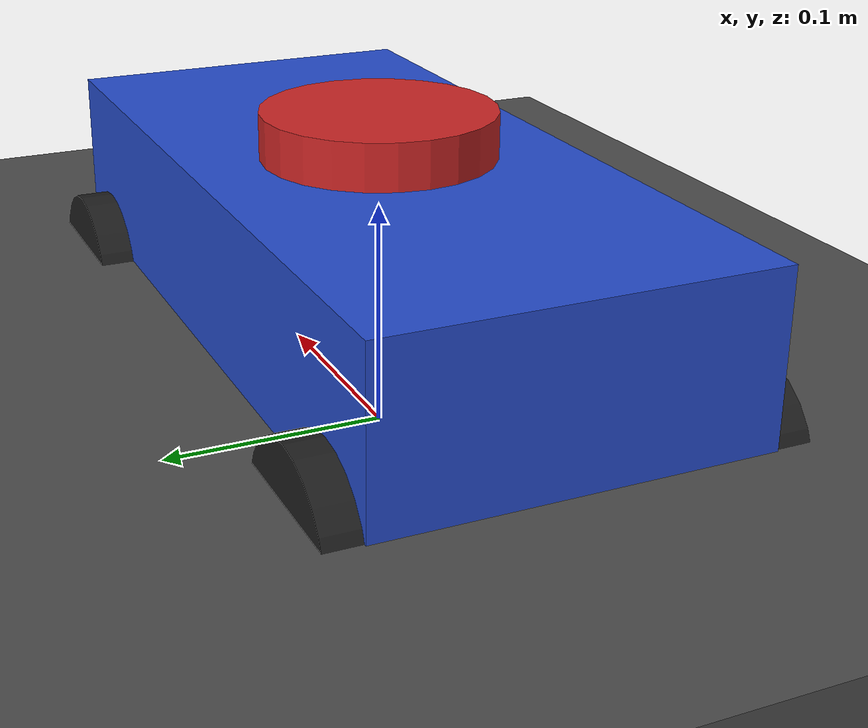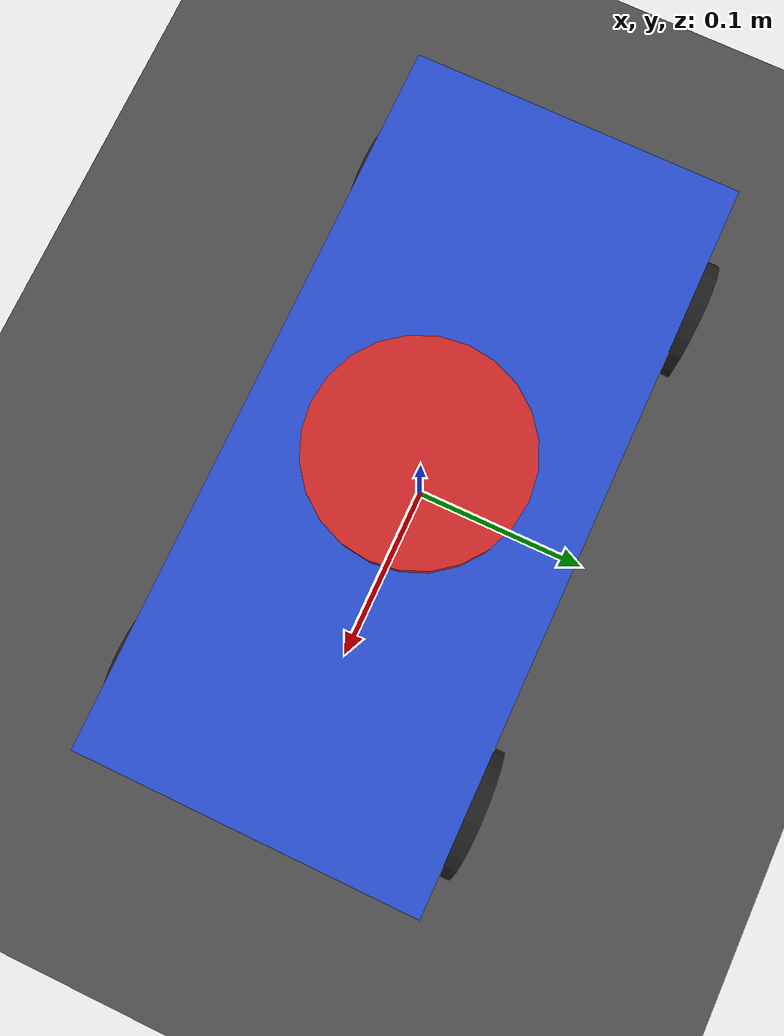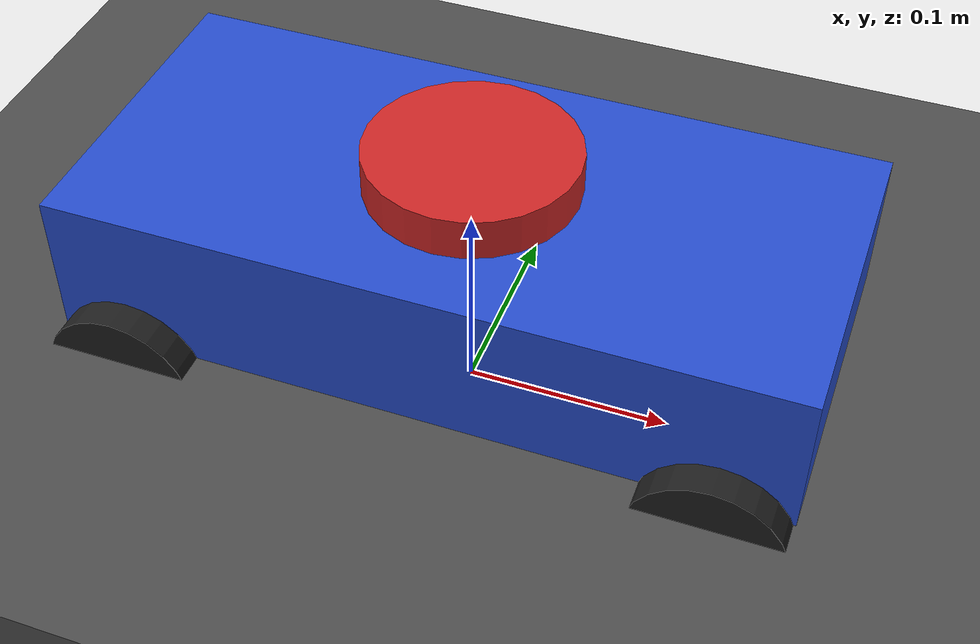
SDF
<sdf version="1.7">
 <world name="default">
  <model name="ground_plane">
   <static>1</static>
   <link name="link">
    <collision name="collision">
     <geometry><plane><normal>0 0 1</normal><size>100 100</size></plane></geometry>
     <surface><friction><ode><mu>100</mu><mu2>50</mu2></ode></friction></surface>
    </collision>
    <visual name="visual">
     <cast_shadows>0</cast_shadows>
     <geometry><plane><normal>0 0 1</normal><size>100 100</size></plane></geometry>
     <material>
      <script><uri>file://media/materials/scripts/gazebo.material</uri><name>Gazebo/Grey</name></script>
     </material>
    </visual>
   </link>
  </model>
  <model name="my_bot">
   <link name="base_link">
    <inertial>
     <pose>-0.00046 0 0.079179 0 -0 0</pose>
     <mass>603</mass>
     <inertia>
      <ixx>87.2384</ixx>
      <ixy>0.576</ixy>
      <ixz>5.37115</ixz>
      <iyy>105.633</iyy>
      <iyz>2.736</iyz>
      <izz>46.3544</izz>
     </inertia>
    </inertial>
    <collision name="base_link_fixed_joint_lump__chassis_collision">
     <pose>0 0 0.07925 0 -0 0</pose>
     <geometry><box><size>0.347 0.161 0.0855</size></box></geometry>
    </collision>
    <collision name="base_link_fixed_joint_lump__back_left_mount_collision_1">
     <pose>-0.1388 0.0805 0.0365 0 -0 0</pose>
     <geometry><cylinder><length>0.01</length><radius>0.0365</radius></cylinder></geometry>
    </collision>
    <collision name="base_link_fixed_joint_lump__back_right_mount_collision_2">
     <pose>-0.1388 -0.0805 0.0365 0 -0 0</pose>
     <geometry><cylinder><length>0.01</length><radius>0.0365</radius></cylinder></geometry>
    </collision>
    <collision name="base_link_fixed_joint_lump__laser_frame_collision_3">
     <pose>0 0 0.122 0 -0 0</pose>
     <geometry><cylinder><length>0.04</length><radius>0.05</radius></cylinder></geometry>
    </collision>
    <visual name="base_link_fixed_joint_lump__chassis_visual">
     <pose>0 0 0.07925 0 -0 0</pose>
     <geometry><box><size>0.347 0.161 0.0855</size></box></geometry>
     <material>
      <script><name>Gazebo/Blue</name><uri>file://media/materials/scripts/gazebo.material</uri></script>
     </material>
    </visual>
    <visual name="base_link_fixed_joint_lump__back_left_mount_visual_1">
     <pose>-0.1388 0.0805 0.0365 0 -0 0</pose>
     <geometry><cylinder><length>0.01</length><radius>0.0365</radius></cylinder></geometry>
    </visual>
    <visual name="base_link_fixed_joint_lump__back_right_mount_visual_2">
     <pose>-0.1388 -0.0805 0.0365 0 -0 0</pose>
     <geometry><cylinder><length>0.01</length><radius>0.0365</radius></cylinder></geometry>
    </visual>
    <visual name="base_link_fixed_joint_lump__laser_frame_visual_3">
     <pose>0 0 0.122 0 -0 0</pose>
     <geometry><cylinder><length>0.04</length><radius>0.05</radius></cylinder></geometry>
     <material>
      <script><name>Gazebo/Red</name><uri>file://media/materials/scripts/gazebo.material</uri></script>
     </material>
    </visual>
    <sensor name="laser" type="ray">
     <visualize>1</visualize>
     <update_rate>10</update_rate>
     <ray>
      <scan>
       <horizontal>
        <samples>360</samples>
        <resolution>1</resolution>
        <min_angle>-3.14</min_angle>
        <max_angle>3.14</max_angle>
       </horizontal>
       <vertical><samples>1</samples><min_angle>0</min_angle><max_angle>0</max_angle></vertical>
      </scan>
      <range><min>0.3</min><max>12</max><resolution>0.01</resolution></range>
     </ray>
     <plugin name="laser_controller" filename="libgazebo_ros_ray_sensor.so">
      <ros><remapping>~/out:=scan</remapping></ros>
      <output_type>sensor_msgs/LaserScan</output_type>
      <frame_name>laser_frame</frame_name>
     </plugin>
     <pose>0 0 0.122 0 -0 0</pose>
    </sensor>
   </link>
   <joint name="back_left_wheel_joint" type="revolute">
    <pose relative_to="base_link">-0.1388 0.0805 0.0365 0 -0 0</pose>
    <parent>base_link</parent>
    <child>back_left_wheel</child>
    <axis>
     <xyz>0 1 0</xyz>
     <limit><lower>-1e+16</lower><upper>1e+16</upper></limit>
     <dynamics><spring_reference>0</spring_reference><spring_stiffness>0</spring_stiffness></dynamics>
    </axis>
   </joint>
   <link name="back_left_wheel">
    <pose relative_to="back_left_wheel_joint">0 0 0 0 -0 0</pose>
    <inertial>
     <mass>1</mass>
     <inertia><ixx>1</ixx><ixy>0</ixy><ixz>0</ixz><iyy>1</iyy><iyz>0</iyz><izz>1</izz></inertia>
    </inertial>
    <collision name="back_left_wheel_collision">
     <pose>0 0 0 1.5708 -0 0</pose>
     <geometry><cylinder><length>0.03</length><radius>0.0365</radius></cylinder></geometry>
    </collision>
    <visual name="back_left_wheel_visual">
     <pose>0 0 0 1.5708 -0 0</pose>
     <geometry><cylinder><length>0.03</length><radius>0.0365</radius></cylinder></geometry>
     <material>
      <script><name>Gazebo/Black</name><uri>file://media/materials/scripts/gazebo.material</uri></script>
     </material>
    </visual>
   </link>
   <joint name="back_right_wheel_joint" type="revolute">
    <pose relative_to="base_link">-0.1388 -0.0805 0.0365 0 -0 0</pose>
    <parent>base_link</parent>
    <child>back_right_wheel</child>
    <axis>
     <xyz>0 1 0</xyz>
     <limit><lower>-1e+16</lower><upper>1e+16</upper></limit>
     <dynamics><spring_reference>0</spring_reference><spring_stiffness>0</spring_stiffness></dynamics>
    </axis>
   </joint>
   <link name="back_right_wheel">
    <pose relative_to="back_right_wheel_joint">0 0 0 0 -0 0</pose>
    <inertial>
     <mass>1</mass>
     <inertia><ixx>1</ixx><ixy>0</ixy><ixz>0</ixz><iyy>1</iyy><iyz>0</iyz><izz>1</izz></inertia>
    </inertial>
    <collision name="back_right_wheel_collision">
     <pose>0 0 0 1.5708 -0 0</pose>
     <geometry><cylinder><length>0.03</length><radius>0.0365</radius></cylinder></geometry>
    </collision>
    <visual name="back_right_wheel_visual">
     <pose>0 0 0 1.5708 -0 0</pose>
     <geometry><cylinder><length>0.03</length><radius>0.0365</radius></cylinder></geometry>
     <material>
      <script><name>Gazebo/Black</name><uri>file://media/materials/scripts/gazebo.material</uri></script>
     </material>
    </visual>
   </link>
   <joint name="front_left_mount_joint" type="revolute">
    <pose relative_to="base_link">0.1388 0.0805 0.0365 0 -0 0</pose>
    <parent>base_link</parent>
    <child>front_left_mount</child>
    <axis>
     <xyz>0 0 1</xyz>
     <limit><lower>-1e+16</lower><upper>1e+16</upper></limit>
     <dynamics><spring_reference>0</spring_reference><spring_stiffness>0</spring_stiffness></dynamics>
    </axis>
   </joint>
   <link name="front_left_mount">
    <pose relative_to="front_left_mount_joint">0 0 0 0 -0 0</pose>
    <inertial>
     <mass>1</mass>
     <inertia><ixx>1</ixx><ixy>0</ixy><ixz>0</ixz><iyy>1</iyy><iyz>0</iyz><izz>1</izz></inertia>
    </inertial>
    <collision name="front_left_mount_collision">
     <geometry><cylinder><length>0.01</length><radius>0.0365</radius></cylinder></geometry>
    </collision>
    <visual name="front_left_mount_visual">
     <geometry><cylinder><length>0.01</length><radius>0.0365</radius></cylinder></geometry>
    </visual>
   </link>
   <joint name="front_left_wheel_joint" type="revolute">
    <pose relative_to="front_left_mount">0 0 0 0 -0 0</pose>
    <parent>front_left_mount</parent>
    <child>front_left_wheel</child>
    <axis>
     <xyz>0 1 0</xyz>
     <limit><lower>-1e+16</lower><upper>1e+16</upper></limit>
     <dynamics><spring_reference>0</spring_reference><spring_stiffness>0</spring_stiffness></dynamics>
    </axis>
   </joint>
   <link name="front_left_wheel">
    <pose relative_to="front_left_wheel_joint">0 0 0 0 -0 0</pose>
    <inertial>
     <mass>1</mass>
     <inertia><ixx>1</ixx><ixy>0</ixy><ixz>0</ixz><iyy>1</iyy><iyz>0</iyz><izz>1</izz></inertia>
    </inertial>
    <collision name="front_left_wheel_collision">
     <pose>0 0 0 1.5708 -0 0</pose>
     <geometry><cylinder><length>0.03</length><radius>0.0365</radius></cylinder></geometry>
    </collision>
    <visual name="front_left_wheel_visual">
     <pose>0 0 0 1.5708 -0 0</pose>
     <geometry><cylinder><length>0.03</length><radius>0.0365</radius></cylinder></geometry>
     <material>
      <script><name>Gazebo/Black</name><uri>file://media/materials/scripts/gazebo.material</uri></script>
     </material>
    </visual>
   </link>
   <joint name="front_right_mount_joint" type="revolute">
    <pose relative_to="base_link">0.1388 -0.0805 0.0365 0 -0 0</pose>
    <parent>base_link</parent>
    <child>front_right_mount</child>
    <axis>
     <xyz>0 0 1</xyz>
     <limit><lower>-1e+16</lower><upper>1e+16</upper></limit>
     <dynamics><spring_reference>0</spring_reference><spring_stiffness>0</spring_stiffness></dynamics>
    </axis>
   </joint>
   <link name="front_right_mount">
    <pose relative_to="front_right_mount_joint">0 0 0 0 -0 0</pose>
    <inertial>
     <mass>1</mass>
     <inertia><ixx>1</ixx><ixy>0</ixy><ixz>0</ixz><iyy>1</iyy><iyz>0</iyz><izz>1</izz></inertia>
    </inertial>
    <collision name="front_right_mount_collision">
     <geometry><cylinder><length>0.01</length><radius>0.0365</radius></cylinder></geometry>
    </collision>
    <visual name="front_right_mount_visual">
     <geometry><cylinder><length>0.01</length><radius>0.0365</radius></cylinder></geometry>
    </visual>
   </link>
   <joint name="front_right_wheel_joint" type="revolute">
    <pose relative_to="front_right_mount">0 0 0 0 -0 0</pose>
    <parent>front_right_mount</parent>
    <child>front_right_wheel</child>
    <axis>
     <xyz>0 1 0</xyz>
     <limit><lower>-1e+16</lower><upper>1e+16</upper></limit>
     <dynamics><spring_reference>0</spring_reference><spring_stiffness>0</spring_stiffness></dynamics>
    </axis>
   </joint>
   <link name="front_right_wheel">
    <pose relative_to="front_right_wheel_joint">0 0 0 0 -0 0</pose>
    <inertial>
     <mass>1</mass>
     <inertia><ixx>1</ixx><ixy>0</ixy><ixz>0</ixz><iyy>1</iyy><iyz>0</iyz><izz>1</izz></inertia>
    </inertial>
    <collision name="front_right_wheel_collision">
     <pose>0 0 0 1.5708 -0 0</pose>
     <geometry><cylinder><length>0.03</length><radius>0.0365</radius></cylinder></geometry>
    </collision>
    <visual name="front_right_wheel_visual">
     <pose>0 0 0 1.5708 -0 0</pose>
     <geometry><cylinder><length>0.03</length><radius>0.0365</radius></cylinder></geometry>
     <material>
      <script><name>Gazebo/Black</name><uri>file://media/materials/scripts/gazebo.material</uri></script>
     </material>
    </visual>
   </link>
   <plugin name="gertrud_joint_state" filename="libgazebo_ros_joint_state_publisher.so">
    <update_rate>30</update_rate>
    <joint_name>front_left_wheel_joint</joint_name>
    <joint_name>front_right_wheel_joint</joint_name>
    <joint_name>back_left_wheel_joint</joint_name>
    <joint_name>back_right_wheel_joint</joint_name>
    <joint_name>front_left_mount_joint</joint_name>
    <joint_name>front_right_mount_joint</joint_name>
    <joint_name>back_left_mount_joint</joint_name>
    <joint_name>back_right_mount_joint</joint_name>
   </plugin>
   <plugin name="gazebo_ros_joint_pose_trajectory" filename="libgazebo_ros_joint_pose_trajectory.so">
    <update_rate>2</update_rate>
   </plugin>
   <static>0</static>
   <plugin name="ackermann_drive" filename="libgazebo_ros_ackermann_drive.so">
    <update_rate>100.0</update_rate>
    <front_left_joint>front_left_wheel_joint</front_left_joint>
    <front_right_joint>front_right_wheel_joint</front_right_joint>
    <rear_left_joint>back_left_wheel_joint</rear_left_joint>
    <rear_right_joint>back_right_wheel_joint</rear_right_joint>
    <left_steering_joint>front_left_mount_joint</left_steering_joint>
    <right_steering_joint>front_right_mount_joint</right_steering_joint>
    <max_steer>0.6458</max_steer>
    <max_steering_angle>7.85</max_steering_angle>
    <max_speed>20</max_speed>
    <left_steering_pid_gain>5000 1000 500</left_steering_pid_gain>
    <left_steering_i_range>0 0</left_steering_i_range>
    <right_steering_pid_gain>5000 1000 500</right_steering_pid_gain>
    <right_steering_i_range>0 0</right_steering_i_range>
    <linear_velocity_pid_gain>10 5 5</linear_velocity_pid_gain>
    <linear_velocity_i_range>0 0</linear_velocity_i_range>
    <publish_odom>1</publish_odom>
    <publish_odom_tf>1</publish_odom_tf>
    <publish_wheel_tf>1</publish_wheel_tf>
    <publish_distance>1</publish_distance>
    <odometry_frame>odom</odometry_frame>
    <robot_base_frame>base_link</robot_base_frame>
   </plugin>
   <pose>0.000602 -0.00023 -0.000196 0.000479 0.000627 -0.000202</pose>
  </model>
  <model name="asphalt_plane">
   <link name="link">
    <inertial>
     <mass>1e+23</mass>
     <inertia>
      <ixx>2.07641e+27</ixx>
      <ixy>0</ixy>
      <ixz>0</ixz>
      <iyy>2.7889e+27</iyy>
      <iyz>0</iyz>
      <izz>4.86531e+27</izz>
     </inertia>
    </inertial>
    <visual name="visual">
     <cast_shadows>0</cast_shadows>
     <geometry><box><size>578.505 499.168 0.1</size></box></geometry>
     <material>
      <script>
       <uri>model://asphalt_plane/materials/scripts</uri>
       <uri>model://asphalt_plane/materials/textures</uri>
       <name>vrc/asphalt</name>
      </script>
      <shader type="pixel"><normal_map>__default__</normal_map></shader>
      <ambient>0.5 0.5 0.5 1</ambient>
      <diffuse>0.5 0.5 0.5 1</diffuse>
      <specular>0.2 0.2 0.2 1</specular>
      <emissive>0 0 0 1</emissive>
     </material>
    </visual>
    <collision name="collision">
     <geometry><box><size>578.505 499.168 0.1</size></box></geometry>
     <surface>
      <friction>
       <ode><mu>1</mu><mu2>1</mu2><fdir1>0 0 0</fdir1><slip1>0</slip1><slip2>0</slip2></ode>
       <torsional>
        <coefficient>1</coefficient>
        <patch_radius>0</patch_radius>
        <surface_radius>0</surface_radius>
        <use_patch_radius>1</use_patch_radius>
        <ode><slip>0</slip></ode>
       </torsional>
      </friction>
      <bounce><restitution_coefficient>0</restitution_coefficient><threshold>1e+06</threshold></bounce>
      <contact>
       <collide_without_contact>0</collide_without_contact>
       <collide_without_contact_bitmask>1</collide_without_contact_bitmask>
       <collide_bitmask>1</collide_bitmask>
       <ode>
        <soft_cfm>0</soft_cfm>
        <soft_erp>0.2</soft_erp>
        <kp>1e+13</kp>
        <kd>1</kd>
        <max_vel>0.01</max_vel>
        <min_depth>0</min_depth>
       </ode>
       <bullet>
        <split_impulse>1</split_impulse>
        <split_impulse_penetration_threshold>-0.01</split_impulse_penetration_threshold>
        <soft_cfm>0</soft_cfm>
        <soft_erp>0.2</soft_erp>
        <kp>1e+13</kp>
        <kd>1</kd>
       </bullet>
      </contact>
     </surface>
    </collision>
   </link>
   <static>1</static>
   <pose>0.107557 -0.074396 0 0 -0 0</pose>
  </model>
 </world>
</sdf>
